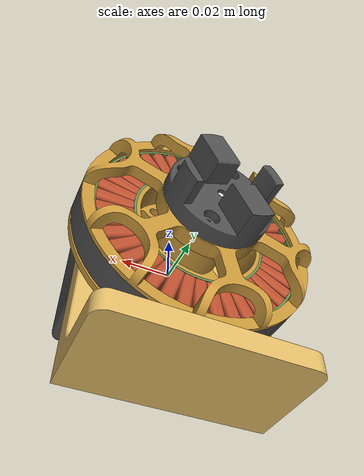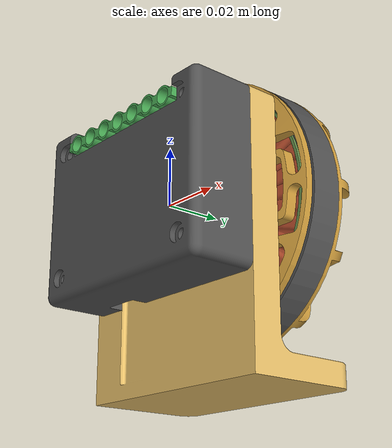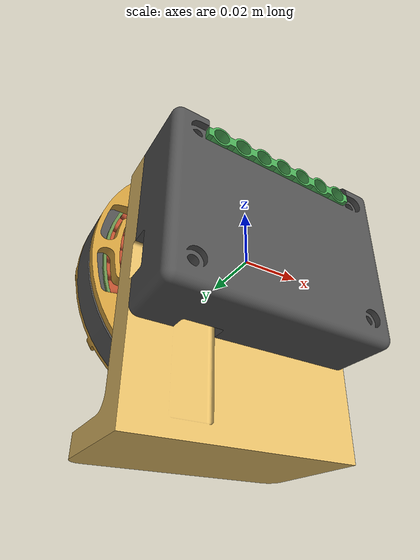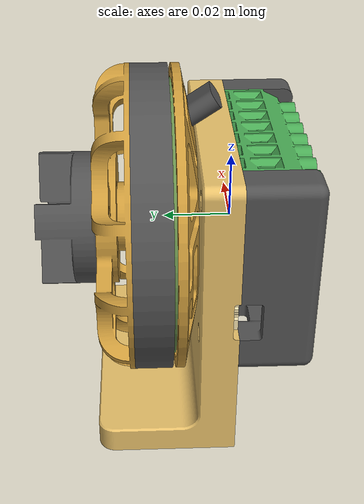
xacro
<!--URDF generated by ONSHAPE BY PTC INC, 1.221-->
<robot name="eagle_power_test_stand_assembly" xmlns:xacro="http://www.ros.org/wiki/xacro">
    <!-- Simulation uses a mock joint interface; the CAD model remains reusable
         with the future physical CAN hardware implementation. -->
    <xacro:include filename="planetary_eagle.ros2_control.xacro" />
    <link name="encoder_magnet_holder">
        <inertial>
            <mass value="2.13146e-06" />
            <origin xyz="6.98415e-19 -5.44359e-19 -0.00421876" rpy="0 -0 0" />
            <inertia ixx="1.10543e-10" ixy="0" ixz="0" iyy="1.10543e-10" iyz="0" izz="2.07342e-10" />
        </inertial>
        <visual>
            <origin xyz="0 0 0" rpy="0 -0 0" />
            <geometry>
                <mesh filename="package://embr_description/meshes/meshes_eagle/meshes/Encoder_Magnet_Holder.stl" scale="1 1 1" />
            </geometry>
            <material name="0.372549_0.654902_0.239216_0.000000_0.000000">
                <color rgba="0.372549 0.654902 0.239216 1" />
            </material>
        </visual>
    </link>
    <link name="odrive_s1">
        <inertial>
            <mass value="5.16851e-06" />
            <origin xyz="6.49126e-05 -0.0116938 -0.0233875" rpy="0 -0 0" />
            <inertia ixx="2.28099e-10" ixy="-2.36727e-13" ixz="3.35555e-13" iyy="1.40957e-09" iyz="-6.52897e-12" izz="1.50391e-09" />
        </inertial>
        <visual>
            <origin xyz="0 0 0" rpy="0 -0 0" />
            <geometry>
                <mesh filename="package://embr_description/meshes/meshes_eagle/meshes/ODrive_S1.stl" scale="1 1 1" />
            </geometry>
            <material name="0.286275_0.662745_0.329412_0.000000_0.000000">
                <color rgba="0.286275 0.662745 0.329412 1" />
            </material>
        </visual>
    </link>
    <link name="odrive_s1_1">
        <inertial>
            <mass value="6.53815e-06" />
            <origin xyz="0.0300023 -0.00102516 0.022169" rpy="0 -0 0" />
            <inertia ixx="1.30827e-09" ixy="0" ixz="5.44648e-14" iyy="3.63768e-09" iyz="0" izz="2.33399e-09" />
        </inertial>
        <visual>
            <origin xyz="0.0300028 3.05311e-18 0.022169" rpy="0 -0 0" />
            <geometry>
                <mesh filename="package://embr_description/meshes/meshes_eagle/meshes/ODrive_S1_1.stl" scale="1 1 1" />
            </geometry>
            <material name="0.941176_0.874510_0.678431_0.000000_0.000000">
                <color rgba="0.941176 0.87451 0.678431 1" />
            </material>
        </visual>
    </link>
    <link name="odrive_s1_cover">
        <inertial>
            <mass value="3.11809e-05" />
            <origin xyz="-0.0294818 -0.0271924 0.0142333" rpy="0 -0 0" />
            <inertia ixx="1.20051e-08" ixy="1.97783e-10" ixz="1.81535e-10" iyy="2.42245e-08" iyz="-1.76223e-10" izz="3.35986e-08" />
        </inertial>
        <visual>
            <origin xyz="-0.03 -0.022 0.0217747" rpy="0 -0 0" />
            <geometry>
                <mesh filename="package://embr_description/meshes/meshes_eagle/meshes/ODrive_S1_Cover.stl" scale="1 1 1" />
            </geometry>
            <material name="0.313725_0.313725_0.313725_0.000000_0.000000">
                <color rgba="0.313726 0.313726 0.313726 1" />
            </material>
        </visual>
    </link>
    <link name="part_1">
        <inertial>
            <mass value="1.17583e-05" />
            <origin xyz="1.48343e-17 0.0155 0.00603404" rpy="0 -0 0.785398" />
            <inertia ixx="1.42961e-09" ixy="1.43313e-10" ixz="0" iyy="1.42961e-09" iyz="0" izz="2.37111e-09" />
        </inertial>
        <visual>
            <origin xyz="1.82146e-17 0.0155 0.007" rpy="0 -0 0.785398" />
            <geometry>
                <mesh filename="package://embr_description/meshes/meshes_eagle/meshes/Part_1.stl" scale="1 1 1" />
            </geometry>
            <material name="0.313725_0.313725_0.313725_0.000000_0.000000">
                <color rgba="0.313726 0.313726 0.313726 1" />
            </material>
        </visual>
    </link>
    <link name="root" />
    <link name="rotor">
        <inertial>
            <mass value="2.25134e-06" />
            <origin xyz="1.68318e-18 -8.68829e-19 0.00325" rpy="0 -0 2.82717" />
            <inertia ixx="6.99793e-11" ixy="0" ixz="0" iyy="6.99793e-11" iyz="0" izz="1.24105e-10" />
        </inertial>
        <visual>
            <origin xyz="0 0 0" rpy="0 -0 2.82717" />
            <geometry>
                <mesh filename="package://embr_description/meshes/meshes_eagle/meshes/Rotor.stl" scale="1 1 1" />
            </geometry>
            <material name="0.956863_0.956863_0.956863_0.000000_0.000000">
                <color rgba="0.956863 0.956863 0.956863 1" />
            </material>
        </visual>
    </link>
    <link name="rotor_1">
        <inertial>
            <mass value="9.62672e-07" />
            <origin xyz="7.84575e-19 3.75924e-19 -0.002" rpy="0 -0 0" />
            <inertia ixx="2.18023e-11" ixy="0" ixz="0" iyy="2.18023e-11" iyz="0" izz="4.10374e-11" />
        </inertial>
        <visual>
            <origin xyz="0 0 0" rpy="0 -0 0" />
            <geometry>
                <mesh filename="package://embr_description/meshes/meshes_eagle/meshes/Rotor_1.stl" scale="1 1 1" />
            </geometry>
            <material name="0.313725_0.313725_0.313725_0.000000_0.000000">
                <color rgba="0.313726 0.313726 0.313726 1" />
            </material>
        </visual>
    </link>
    <link name="rotor_2">
        <inertial>
            <mass value="1.33199e-05" />
            <origin xyz="5.30384e-18 -1.41202e-32 0.013" rpy="0 -0 0" />
            <inertia ixx="1.29432e-08" ixy="0" ixz="0" iyy="1.29432e-08" iyz="0" izz="2.56178e-08" />
        </inertial>
        <visual>
            <origin xyz="0 0 0" rpy="0 -0 0" />
            <geometry>
                <mesh filename="package://embr_description/meshes/meshes_eagle/meshes/Rotor_2.stl" scale="1 1 1" />
            </geometry>
            <material name="0.313725_0.313725_0.313725_0.000000_0.000000">
                <color rgba="0.313726 0.313726 0.313726 1" />
            </material>
        </visual>
    </link>
    <link name="rotor_3">
        <inertial>
            <mass value="6.83885e-07" />
            <origin xyz="-5.09467e-18 -3.62859e-21 0.0277791" rpy="0 -0 0" />
            <inertia ixx="1.23528e-11" ixy="0" ixz="0" iyy="1.23528e-11" iyz="0" izz="2.18779e-11" />
        </inertial>
        <visual>
            <origin xyz="0 0 0" rpy="0 -0 0" />
            <geometry>
                <mesh filename="package://embr_description/meshes/meshes_eagle/meshes/Rotor_3.stl" scale="1 1 1" />
            </geometry>
            <material name="0.956863_0.956863_0.956863_0.000000_0.000000">
                <color rgba="0.956863 0.956863 0.956863 1" />
            </material>
        </visual>
    </link>
    <link name="rotor_4">
        <inertial>
            <mass value="1.94128e-05" />
            <origin xyz="-1.32977e-17 7.87659e-18 0.022014" rpy="0 -0 0" />
            <inertia ixx="6.3326e-09" ixy="0" ixz="0" iyy="6.3326e-09" iyz="0" izz="1.13275e-08" />
        </inertial>
        <visual>
            <origin xyz="0 0 0" rpy="0 -0 0" />
            <geometry>
                <mesh filename="package://embr_description/meshes/meshes_eagle/meshes/Rotor_4.stl" scale="1 1 1" />
            </geometry>
            <material name="0.796078_0.603922_0.231373_0.000000_0.000000">
                <color rgba="0.796078 0.603922 0.231373 1" />
            </material>
        </visual>
    </link>
    <link name="stator">
        <inertial>
            <mass value="1.98234e-05" />
            <origin xyz="-0.0133561 0.0141421 0.00597309" rpy="0 -0 0" />
            <inertia ixx="8.22208e-09" ixy="0" ixz="2.44414e-11" iyy="8.72067e-09" iyz="0" izz="1.61578e-08" />
        </inertial>
        <visual>
            <origin xyz="-0.0141421 0.0141421 0" rpy="0 -0 0" />
            <geometry>
                <mesh filename="package://embr_description/meshes/meshes_eagle/meshes/Stator.stl" scale="1 1 1" />
            </geometry>
            <material name="0.796078_0.603922_0.231373_0.000000_0.000000">
                <color rgba="0.796078 0.603922 0.231373 1" />
            </material>
        </visual>
    </link>
    <link name="stator_1">
        <inertial>
            <mass value="3.18603e-05" />
            <origin xyz="1.34275e-09 -1.7901e-09 0.0125" rpy="0 -0 0" />
            <inertia ixx="1.87148e-08" ixy="0" ixz="0" iyy="1.87148e-08" iyz="0" izz="3.67028e-08" />
        </inertial>
        <visual>
            <origin xyz="0 0 0" rpy="0 -0 0" />
            <geometry>
                <mesh filename="package://embr_description/meshes/meshes_eagle/meshes/Stator_1.stl" scale="1 1 1" />
            </geometry>
            <material name="0.737255_0.313725_0.184314_0.000000_0.000000">
                <color rgba="0.737255 0.313726 0.184314 1" />
            </material>
        </visual>
    </link>
    <link name="stator_2">
        <inertial>
            <mass value="3.09887e-06" />
            <origin xyz="-2.7442e-17 -3.7933e-33 0.0125" rpy="0 -0 0" />
            <inertia ixx="2.65489e-09" ixy="0" ixz="0" iyy="2.65489e-09" iyz="0" izz="5.23541e-09" />
        </inertial>
        <visual>
            <origin xyz="0 0 0" rpy="0 -0 0" />
            <geometry>
                <mesh filename="package://embr_description/meshes/meshes_eagle/meshes/Stator_2.stl" scale="1 1 1" />
            </geometry>
            <material name="0.403922_0.560784_0.294118_0.000000_0.000000">
                <color rgba="0.403922 0.560784 0.294118 1" />
            </material>
        </visual>
    </link>
    <link name="stator_3">
        <inertial>
            <mass value="1.96035e-06" />
            <origin xyz="-1.63152e-17 -1.49908e-33 0.0125" rpy="0 -0 0" />
            <inertia ixx="6.86369e-10" ixy="0" ixz="0" iyy="6.86369e-10" iyz="0" izz="1.32569e-09" />
        </inertial>
        <visual>
            <origin xyz="0 0 0" rpy="0 -0 0" />
            <geometry>
                <mesh filename="package://embr_description/meshes/meshes_eagle/meshes/Stator_3.stl" scale="1 1 1" />
            </geometry>
            <material name="0.403922_0.560784_0.294118_0.000000_0.000000">
                <color rgba="0.403922 0.560784 0.294118 1" />
            </material>
        </visual>
    </link>
    <link name="stator_4">
        <inertial>
            <mass value="7.71292e-07" />
            <origin xyz="0.0361332 3.35144e-20 -0.000794144" rpy="0 -0 0" />
            <inertia ixx="1.47116e-11" ixy="0" ixz="3.33554e-12" iyy="1.13149e-11" iyz="0" izz="1.20134e-11" />
        </inertial>
        <visual>
            <origin xyz="0 0 0" rpy="0 -0 0" />
            <geometry>
                <mesh filename="package://embr_description/meshes/meshes_eagle/meshes/Stator_4.stl" scale="1 1 1" />
            </geometry>
            <material name="0.313725_0.313725_0.313725_0.000000_0.000000">
                <color rgba="0.313726 0.313726 0.313726 1" />
            </material>
        </visual>
    </link>
    <link name="test_stand">
        <inertial>
            <mass value="7.1344e-05" />
            <origin xyz="0.000232805 0.0113189 -0.0301645" rpy="0 -0 0" />
            <inertia ixx="6.22736e-08" ixy="1.72883e-10" ixz="5.91959e-11" iyy="9.29963e-08" iyz="8.49934e-09" izz="4.47833e-08" />
        </inertial>
        <visual>
            <origin xyz="0 0 0" rpy="0 -0 0" />
            <geometry>
                <mesh filename="package://embr_description/meshes/meshes_eagle/meshes/Test_Stand.stl" scale="1 1 1" />
            </geometry>
            <material name="0.894118_0.741176_0.407843_0.000000_0.000000">
                <color rgba="0.894118 0.741176 0.407843 1" />
            </material>
        </visual>
    </link>
    <joint name="fastened_1" type="fixed">
        <origin xyz="-0.0141421 0.011 0.0141421" rpy="0 -1.5708 4.71239" />
        <axis xyz="0 0 -1" />
        <parent link="test_stand" />
        <child link="stator" />
    </joint>
    <joint name="fastened_2" type="fixed">
        <origin xyz="0.03 0.00205032 0.022" rpy="3.14159 -0 3.14159" />
        <axis xyz="0 1 0" />
        <parent link="test_stand" />
        <child link="odrive_s1_1" />
    </joint>
    <joint name="fastened_3" type="fixed">
        <origin xyz="6.93889e-17 -0.00205032 4.16334e-17" rpy="-1.5708 1.38778e-17 -3.14159" />
        <axis xyz="0 0 -1" />
        <parent link="odrive_s1_1" />
        <child link="odrive_s1_cover" />
    </joint>
    <joint name="fixed_node_to_root_joint" type="fixed">
        <origin xyz="0 0 0" rpy="0 -0 0" />
        <axis xyz="0 0 1" />
        <parent link="root" />
        <child link="test_stand" />
    </joint>
    <joint name="group_1_fastened_joint" type="fixed">
        <origin xyz="-1.2326e-32 0 -1.73472e-18" rpy="0 -0 0" />
        <axis xyz="-0 -0 -1" />
        <parent link="stator_3" />
        <child link="stator_2" />
    </joint>
    <joint name="group_1_fastened_joint_1" type="fixed">
        <origin xyz="-0.0141421 0.0141421 -1.73472e-18" rpy="0 -0 0" />
        <axis xyz="0 0 1" />
        <parent link="stator" />
        <child link="stator_1" />
    </joint>
    <joint name="group_1_fastened_joint_2" type="fixed">
        <origin xyz="-0.0141421 0.0141421 -1.73472e-18" rpy="0 -0 0" />
        <axis xyz="-0 -0 -1" />
        <parent link="stator" />
        <child link="stator_4" />
    </joint>
    <joint name="group_1_fastened_joint_3" type="fixed">
        <origin xyz="-1.2326e-32 0 -1.73472e-18" rpy="0 -0 0" />
        <axis xyz="-0 -0 -1" />
        <parent link="stator_4" />
        <child link="stator_3" />
    </joint>
    <joint name="group_2_fastened_joint" type="fixed">
        <origin xyz="1.2326e-32 6.16298e-33 0" rpy="0 -0 0" />
        <axis xyz="0 0 1" />
        <parent link="rotor_1" />
        <child link="encoder_magnet_holder" />
    </joint>
    <joint name="group_2_fastened_joint_1" type="fixed">
        <origin xyz="1.2326e-32 6.16298e-33 0" rpy="0 -0 0" />
        <axis xyz="-0 -0 -1" />
        <parent link="rotor_4" />
        <child link="rotor_2" />
    </joint>
    <joint name="group_2_fastened_joint_2" type="fixed">
        <origin xyz="0 1.2326e-32 0" rpy="0 -0 2.82717" />
        <axis xyz="-0 -0 -1" />
        <parent link="rotor" />
        <child link="rotor_3" />
    </joint>
    <joint name="group_2_fastened_joint_3" type="fixed">
        <origin xyz="0 1.2326e-32 0" rpy="0 -0 2.82717" />
        <axis xyz="0 0 1" />
        <parent link="rotor" />
        <child link="rotor_1" />
    </joint>
    <joint name="group_2_fastened_joint_4" type="fixed">
        <origin xyz="1.2326e-32 6.16298e-33 0" rpy="0 -0 0" />
        <axis xyz="-0 -0 -1" />
        <parent link="rotor_3" />
        <child link="rotor_4" />
    </joint>
    <joint name="group_3_fastened_joint" type="fixed">
        <origin xyz="0.0300028 2.60209e-18 0.022169" rpy="0 -0 0" />
        <axis xyz="-0 -0 -1" />
        <parent link="odrive_s1_1" />
        <child link="odrive_s1" />
    </joint>
    <joint name="revolute_1" type="continuous">
        <origin xyz="-0.0141421 0.0141421 -8.67362e-18" rpy="0 -0 5.55112e-17" />
        <axis xyz="0 0 -1" />
        <parent link="stator" />
        <child link="rotor" />
    </joint>
    <joint name="revolute_2" type="continuous">
        <origin xyz="0.0155 -3.24821e-18 0.029" rpy="0 -0 1.5708" />
        <axis xyz="0 0 -1" />
        <parent link="rotor_4" />
        <child link="part_1" />
    </joint>
</robot>
